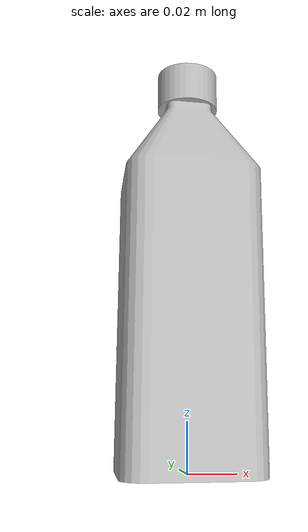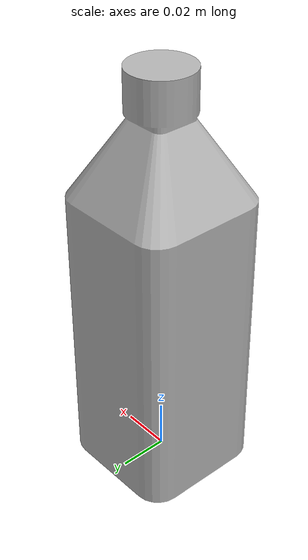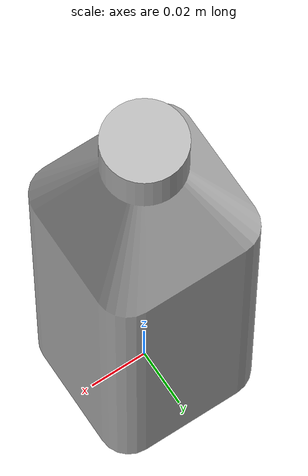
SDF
<?xml version="1.0" ?>

<sdf version="1.5">
  <model name="nrp_7eleven_bottle_juice_tropical">
    <static>true</static>
    <link name="link">
      <visual name="visual">
        <geometry>
          <mesh>
            <uri>model://nrp_7eleven_bottle_juice_tropical/meshes/nrp_7eleven_bottle_juice_tropical.dae</uri>
          </mesh>
        </geometry>
        <material>
          <emissive>0.5 0.5 0.5 1</emissive>
        </material>
      </visual>
    </link>
  </model>
</sdf>
